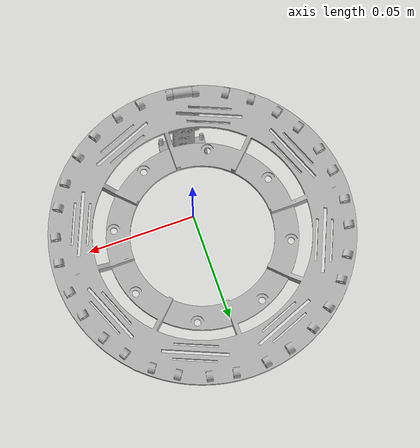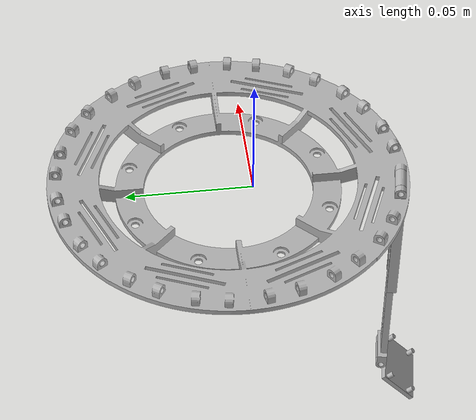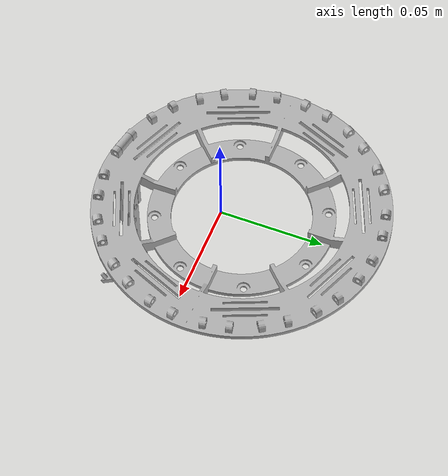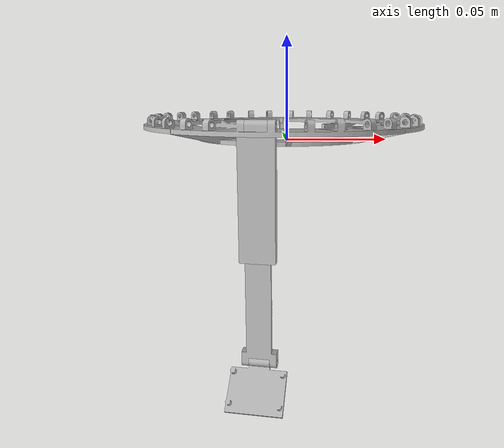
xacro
<?xml version="1.0" ?>
<robot name="full-mount-new" xmlns:xacro="http://www.ros.org/wiki/xacro">

<xacro:include filename="$(find full-mount-new_description)/urdf/materials.xacro" />
<xacro:include filename="$(find full-mount-new_description)/urdf/full-mount-new.trans" />
<xacro:include filename="$(find full-mount-new_description)/urdf/full-mount-new.gazebo" />
<link name="base_link">
  <inertial>
    <origin xyz="-0.0009999999999998784 0.01000150012969967 0.005529238640910319" rpy="0 0 0"/>
    <mass value="0.1728737645704242"/>
    <inertia ixx="0.000274" iyy="0.000273" izz="0.000544" ixy="0.0" iyz="0.0" ixz="-0.0"/>
  </inertial>
  <visual>
    <origin xyz="0 0 0" rpy="0 0 0"/>
    <geometry>
      <mesh filename="/c/Users/thankyou/autom/demo-aug/models/full-mount-new_description/meshes/base_link.stl" scale="0.001 0.001 0.001"/>
    </geometry>
    <material name="silver"/>
  </visual>
  <collision>
    <origin xyz="0 0 0" rpy="0 0 0"/>
    <geometry>
      <mesh filename="/c/Users/thankyou/autom/demo-aug/models/full-mount-new_description/meshes/base_link.stl" scale="0.001 0.001 0.001"/>
    </geometry>
  </collision>
</link>

<link name="camera-mount-slider-base.f3d_v1_1">
  <inertial>
    <origin xyz="0.0010313472342400529 -0.017887052681550414 0.0183644905185133" rpy="0 0 0"/>
    <mass value="0.012954122548799038"/>
    <inertia ixx="4e-06" iyy="2e-06" izz="2e-06" ixy="-0.0" iyz="2e-06" ixz="0.0"/>
  </inertial>
  <visual>
    <origin xyz="0.018472 0.05412 -0.01025" rpy="0 0 0"/>
    <geometry>
      <mesh filename="/c/Users/thankyou/autom/demo-aug/models/full-mount-new_description/meshes/camera-mount-slider-base.f3d_v1_1.stl" scale="0.001 0.001 0.001"/>
    </geometry>
    <material name="silver"/>
  </visual>
  <collision>
    <origin xyz="0.018472 0.05412 -0.01025" rpy="0 0 0"/>
    <geometry>
      <mesh filename="/c/Users/thankyou/autom/demo-aug/models/full-mount-new_description/meshes/camera-mount-slider-base.f3d_v1_1.stl" scale="0.001 0.001 0.001"/>
    </geometry>
  </collision>
</link>

<link name="camera-mount-slider_1">
  <inertial>
    <origin xyz="0.001314255649585358 0.018300018348111374 -0.0026028854037946705" rpy="0 0 0"/>
    <mass value="0.013141632695650938"/>
    <inertia ixx="4e-06" iyy="2e-06" izz="2e-06" ixy="-0.0" iyz="2e-06" ixz="0.0"/>
  </inertial>
  <visual>
    <origin xyz="0.022851 0.110916 -0.050749" rpy="0 0 0"/>
    <geometry name="camera-mount-slider">
      <mesh filename="/c/Users/thankyou/autom/demo-aug/models/full-mount-new_description/meshes/camera-mount-slider_1.stl" scale="0.001 0.001 0.001"/>
    </geometry>
    <material name="silver"/>
  </visual>
  <collision>
    <origin xyz="0.022851 0.110916 -0.050749" rpy="0 0 0"/>
    <geometry name="camera-mount-slider-vis">
      <mesh filename="/c/Users/thankyou/autom/demo-aug/models/full-mount-new_description/meshes/camera-mount-slider_1.stl" scale="0.001 0.001 0.001"/>
    </geometry>
  </collision>
</link>

<link name="camera-mount-cam-holder_1">
  <inertial>
    <origin xyz="0.003423269828836655 -0.005856468897799061 0.009575661241026406" rpy="0 0 0"/>
    <mass value="0.008130563565877349"/>
    <inertia ixx="0.0" iyy="1e-06" izz="0.0" ixy="0.0" iyz="0.0" ixz="0.0"/>
  </inertial>
  <visual>
    <origin xyz="0.029666 0.110376 -0.066017" rpy="0 0 0"/>
    <geometry>
      <mesh filename="/c/Users/thankyou/autom/demo-aug/models/full-mount-new_description/meshes/camera-mount-cam-holder_1.stl" scale="0.001 0.001 0.001"/>
    </geometry>
    <material name="silver"/>
  </visual>
  <collision>
    <origin xyz="0.029666 0.110376 -0.066017" rpy="0 0 0"/>
    <geometry>
      <mesh filename="/c/Users/thankyou/autom/demo-aug/models/full-mount-new_description/meshes/camera-mount-cam-holder_1.stl" scale="0.001 0.001 0.001"/>
    </geometry>
  </collision>
</link>

<joint name="Revolute 1" type="revolute">
  <origin xyz="-0.018472 -0.05412 0.01025" rpy="0 0 0"/>
  <parent link="base_link"/>
  <child link="camera-mount-slider-base.f3d_v1_1"/>
  <axis xyz="-0.9808 0.195014 -0.0"/>
  <limit upper="3.926991" lower="3.926991" effort="100" velocity="100"/>
</joint>

<joint name="Slider 2" type="prismatic">
  <origin xyz="-0.004379 -0.056796 0.040499" rpy="0 0 0"/>
  <parent link="camera-mount-slider-base.f3d_v1_1"/>
  <child link="camera-mount-slider_1"/>
  <axis xyz="-0.137896 -0.693531 0.707107"/>
  <limit upper="0.02" lower="0.02" effort="100" velocity="100"/>
</joint>

<joint name="Revolute 3" type="revolute">
  <origin xyz="-0.006815 0.00054 0.015268" rpy="0 0 0"/>
  <parent link="camera-mount-slider_1"/>
  <child link="camera-mount-cam-holder_1"/>
  <axis xyz="0.9808 -0.195014 -0.0"/>
  <limit upper="-0.392699" lower="-0.392699" effort="100" velocity="100"/>
</joint>

</robot>

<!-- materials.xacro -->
<robot name="full-mount-new" xmlns:xacro="http://www.ros.org/wiki/xacro" >

<material name="silver">
  <color rgba="0.700 0.700 0.700 1.000"/>
</material>

</robot>

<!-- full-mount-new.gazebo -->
<robot name="full-mount-new" xmlns:xacro="http://www.ros.org/wiki/xacro" >

<xacro:property name="body_color" value="Gazebo/Silver" />

<gazebo>
  <plugin name="control" filename="libgazebo_ros_control.so"/>
</gazebo>
<gazebo reference="base_link">
  <material>${body_color}</material>
  <mu1>0.2</mu1>
  <mu2>0.2</mu2>
  <selfCollide>true</selfCollide>
  <gravity>true</gravity>
</gazebo>

<gazebo reference="camera-mount-slider-base.f3d_v1_1">
  <material>${body_color}</material>
  <mu1>0.2</mu1>
  <mu2>0.2</mu2>
  <selfCollide>true</selfCollide>
</gazebo>

<gazebo reference="camera-mount-slider_1">
  <material>${body_color}</material>
  <mu1>0.2</mu1>
  <mu2>0.2</mu2>
  <selfCollide>true</selfCollide>
</gazebo>

<gazebo reference="camera-mount-cam-holder_1">
  <material>${body_color}</material>
  <mu1>0.2</mu1>
  <mu2>0.2</mu2>
  <selfCollide>true</selfCollide>
</gazebo>

</robot>
